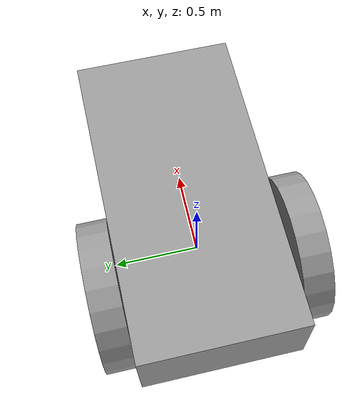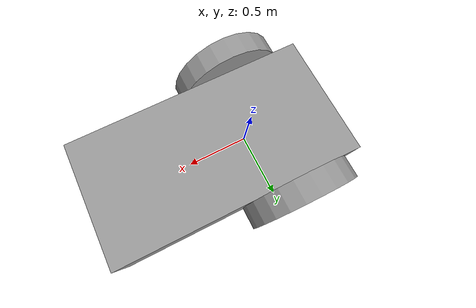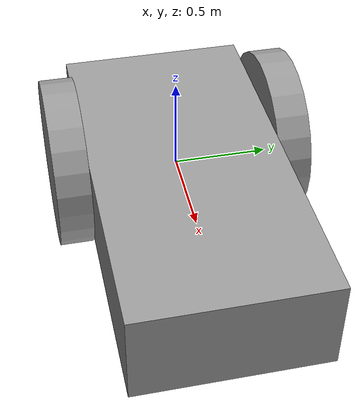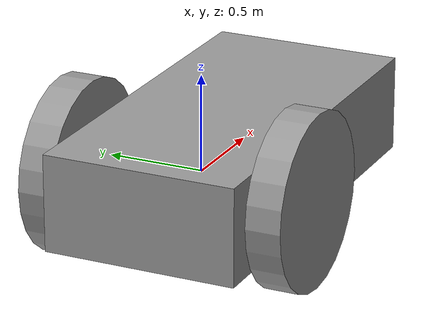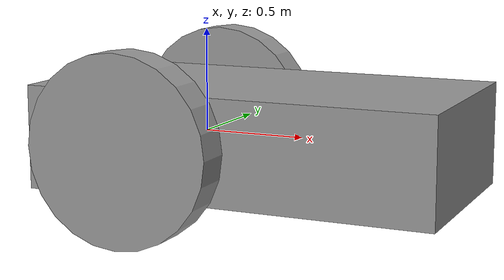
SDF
<?xml version='1.0'?>
<sdf version='1.7'>
  <model name='MyChassi'>
    <link name='link_0'>
      <inertial>
        <mass>0.727703</mass>
        <inertia>
          <ixx>0.0927545</ixx>
          <ixy>0</ixy>
          <ixz>0</ixz>
          <iyy>0.0927545</iyy>
          <iyz>0</iyz>
          <izz>0.121284</izz>
        </inertia>
        <pose>0 0 0 0 -0 0</pose>
      </inertial>
      <pose>0.302083 1e-06 -0.00024 0 -0 0</pose>
      <gravity>1</gravity>
      <self_collide>0</self_collide>
      <kinematic>0</kinematic>
      <enable_wind>0</enable_wind>
      <visual name='visual'>
        <pose>0 0 0 0 -0 0</pose>
        <geometry>
          <box>
            <size>2 1 0.5</size>
          </box>
        </geometry>
        <material>
          <lighting>1</lighting>
          <script>
            <uri>file://media/materials/scripts/gazebo.material</uri>
            <name>Gazebo/Grey</name>
          </script>
          <shader type='pixel'>
            <normal_map>__default__</normal_map>
          </shader>
          <ambient>0.3 0.3 0.3 1</ambient>
          <diffuse>0.7 0.7 0.7 1</diffuse>
          <specular>0.01 0.01 0.01 1</specular>
          <emissive>0 0 0 1</emissive>
        </material>
        <transparency>0</transparency>
        <cast_shadows>1</cast_shadows>
      </visual>
      <collision name='collision'>
        <laser_retro>0</laser_retro>
        <max_contacts>10</max_contacts>
        <pose>0 0 0 0 -0 0</pose>
        <geometry>
          <box>
            <size>2 1 0.5</size>
          </box>
        </geometry>
        <surface>
          <friction>
            <ode>
              <mu>1</mu>
              <mu2>1</mu2>
              <fdir1>0 0 0</fdir1>
              <slip1>0</slip1>
              <slip2>0</slip2>
            </ode>
            <torsional>
              <coefficient>1</coefficient>
              <patch_radius>0</patch_radius>
              <surface_radius>0</surface_radius>
              <use_patch_radius>1</use_patch_radius>
              <ode>
                <slip>0</slip>
              </ode>
            </torsional>
          </friction>
          <bounce>
            <restitution_coefficient>0</restitution_coefficient>
            <threshold>1e+06</threshold>
          </bounce>
          <contact>
            <collide_without_contact>0</collide_without_contact>
            <collide_without_contact_bitmask>1</collide_without_contact_bitmask>
            <collide_bitmask>1</collide_bitmask>
            <ode>
              <soft_cfm>0</soft_cfm>
              <soft_erp>0.2</soft_erp>
              <kp>1e+13</kp>
              <kd>1</kd>
              <max_vel>0.01</max_vel>
              <min_depth>0</min_depth>
            </ode>
            <bullet>
              <split_impulse>1</split_impulse>
              <split_impulse_penetration_threshold>-0.01</split_impulse_penetration_threshold>
              <soft_cfm>0</soft_cfm>
              <soft_erp>0.2</soft_erp>
              <kp>1e+13</kp>
              <kd>1</kd>
            </bullet>
          </contact>
        </surface>
      </collision>
    </link>
    <link name='link_4'>
      <inertial>
        <mass>0.145958</mass>
        <inertia>
          <ixx>0.00781272</ixx>
          <ixy>0</ixy>
          <ixz>0</ixz>
          <iyy>0.00781272</iyy>
          <iyz>0</iyz>
          <izz>0.0148425</izz>
        </inertia>
        <pose>0 0 0 0 -0 0</pose>
      </inertial>
      <pose>-0.12702 -0.590058 0.000418 1.57 -0 0</pose>
      <visual name='visual'>
        <pose>0 0 0 0 -0 0</pose>
        <geometry>
          <cylinder>
            <radius>0.450978</radius>
            <length>0.1794</length>
          </cylinder>
        </geometry>
        <material>
          <lighting>1</lighting>
          <script>
            <uri>file://media/materials/scripts/gazebo.material</uri>
            <name>Gazebo/Grey</name>
          </script>
          <shader type='pixel'/>
          <emissive>0 0 0 1</emissive>
        </material>
        <transparency>0</transparency>
        <cast_shadows>1</cast_shadows>
      </visual>
      <collision name='collision'>
        <laser_retro>0</laser_retro>
        <max_contacts>10</max_contacts>
        <pose>0 0 0 0 -0 0</pose>
        <geometry>
          <cylinder>
            <radius>0.450978</radius>
            <length>0.1794</length>
          </cylinder>
        </geometry>
        <surface>
          <friction>
            <ode>
              <mu>1</mu>
              <mu2>1</mu2>
              <fdir1>0 0 0</fdir1>
              <slip1>0</slip1>
              <slip2>0</slip2>
            </ode>
            <torsional>
              <coefficient>1</coefficient>
              <patch_radius>0</patch_radius>
              <surface_radius>0</surface_radius>
              <use_patch_radius>1</use_patch_radius>
              <ode>
                <slip>0</slip>
              </ode>
            </torsional>
          </friction>
          <bounce>
            <restitution_coefficient>0</restitution_coefficient>
            <threshold>1e+06</threshold>
          </bounce>
          <contact>
            <collide_without_contact>0</collide_without_contact>
            <collide_without_contact_bitmask>1</collide_without_contact_bitmask>
            <collide_bitmask>1</collide_bitmask>
            <ode>
              <soft_cfm>0</soft_cfm>
              <soft_erp>0.2</soft_erp>
              <kp>1e+13</kp>
              <kd>1</kd>
              <max_vel>0.01</max_vel>
              <min_depth>0</min_depth>
            </ode>
            <bullet>
              <split_impulse>1</split_impulse>
              <split_impulse_penetration_threshold>-0.01</split_impulse_penetration_threshold>
              <soft_cfm>0</soft_cfm>
              <soft_erp>0.2</soft_erp>
              <kp>1e+13</kp>
              <kd>1</kd>
            </bullet>
          </contact>
        </surface>
      </collision>
    </link>
    <link name='link_4_clone'>
      <inertial>
        <mass>0.145958</mass>
        <inertia>
          <ixx>0.00781272</ixx>
          <ixy>0</ixy>
          <ixz>0</ixz>
          <iyy>0.00781272</iyy>
          <iyz>0</iyz>
          <izz>0.0148425</izz>
        </inertia>
        <pose>0 0 0 0 -0 0</pose>
      </inertial>
      <pose>-0.175063 0.59006 -0.000177 1.57 -0 0</pose>
      <visual name='visual'>
        <pose>0 0 0 0 -0 0</pose>
        <geometry>
          <cylinder>
            <radius>0.450978</radius>
            <length>0.1794</length>
          </cylinder>
        </geometry>
        <material>
          <lighting>1</lighting>
          <script>
            <uri>file://media/materials/scripts/gazebo.material</uri>
            <name>Gazebo/Grey</name>
          </script>
          <shader type='pixel'/>
          <emissive>0 0 0 1</emissive>
        </material>
        <transparency>0</transparency>
        <cast_shadows>1</cast_shadows>
      </visual>
      <collision name='collision'>
        <laser_retro>0</laser_retro>
        <max_contacts>10</max_contacts>
        <pose>0 0 0 0 -0 0</pose>
        <geometry>
          <cylinder>
            <radius>0.450978</radius>
            <length>0.1794</length>
          </cylinder>
        </geometry>
        <surface>
          <friction>
            <ode>
              <mu>1</mu>
              <mu2>1</mu2>
              <fdir1>0 0 0</fdir1>
              <slip1>0</slip1>
              <slip2>0</slip2>
            </ode>
            <torsional>
              <coefficient>1</coefficient>
              <patch_radius>0</patch_radius>
              <surface_radius>0</surface_radius>
              <use_patch_radius>1</use_patch_radius>
              <ode>
                <slip>0</slip>
              </ode>
            </torsional>
          </friction>
          <bounce>
            <restitution_coefficient>0</restitution_coefficient>
            <threshold>1e+06</threshold>
          </bounce>
          <contact>
            <collide_without_contact>0</collide_without_contact>
            <collide_without_contact_bitmask>1</collide_without_contact_bitmask>
            <collide_bitmask>1</collide_bitmask>
            <ode>
              <soft_cfm>0</soft_cfm>
              <soft_erp>0.2</soft_erp>
              <kp>1e+13</kp>
              <kd>1</kd>
              <max_vel>0.01</max_vel>
              <min_depth>0</min_depth>
            </ode>
            <bullet>
              <split_impulse>1</split_impulse>
              <split_impulse_penetration_threshold>-0.01</split_impulse_penetration_threshold>
              <soft_cfm>0</soft_cfm>
              <soft_erp>0.2</soft_erp>
              <kp>1e+13</kp>
              <kd>1</kd>
            </bullet>
          </contact>
        </surface>
      </collision>
    </link>
    <joint name='link_0_JOINT_1' type='revolute'>
      <parent>link_0</parent>
      <child>link_4</child>
      <pose>0 0 0 0 -0 0</pose>
      <axis>
        <xyz>1 0 0</xyz>
        <limit>
          <lower>-1.79769e+308</lower>
          <upper>1.79769e+308</upper>
          <effort>-1</effort>
          <velocity>-1</velocity>
        </limit>
        <dynamics>
          <spring_reference>0</spring_reference>
          <spring_stiffness>0</spring_stiffness>
          <damping>0</damping>
        </dynamics>
      </axis>
      <physics>
        <ode>
          <limit>
            <cfm>0</cfm>
            <erp>0.2</erp>
          </limit>
          <suspension>
            <cfm>0</cfm>
            <erp>0.2</erp>
          </suspension>
        </ode>
      </physics>
    </joint>
    <joint name='link_0_JOINT_2' type='revolute'>
      <parent>link_0</parent>
      <child>link_4_clone</child>
      <pose>0 0 0 0 -0 0</pose>
      <axis>
        <xyz>1 0 0</xyz>
        <limit>
          <lower>-1.79769e+308</lower>
          <upper>1.79769e+308</upper>
          <effort>-1</effort>
          <velocity>-1</velocity>
        </limit>
        <dynamics>
          <spring_reference>0</spring_reference>
          <spring_stiffness>0</spring_stiffness>
          <damping>0</damping>
        </dynamics>
      </axis>
      <physics>
        <ode>
          <limit>
            <cfm>0</cfm>
            <erp>0.2</erp>
          </limit>
          <suspension>
            <cfm>0</cfm>
            <erp>0.2</erp>
          </suspension>
        </ode>
      </physics>
    </joint>
    <static>0</static>
    <allow_auto_disable>1</allow_auto_disable>
  </model>
</sdf>
